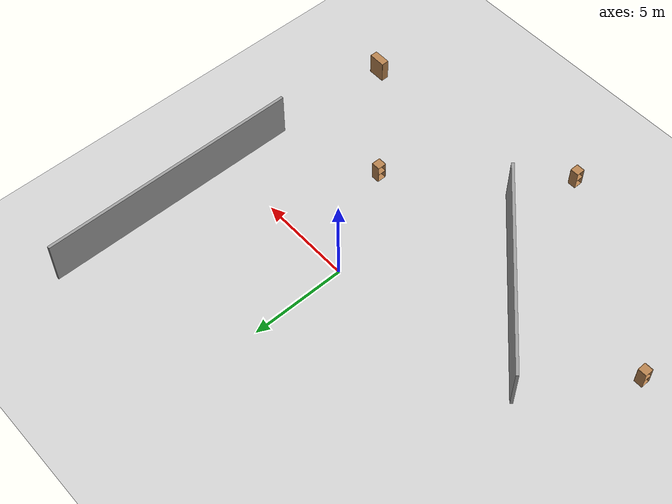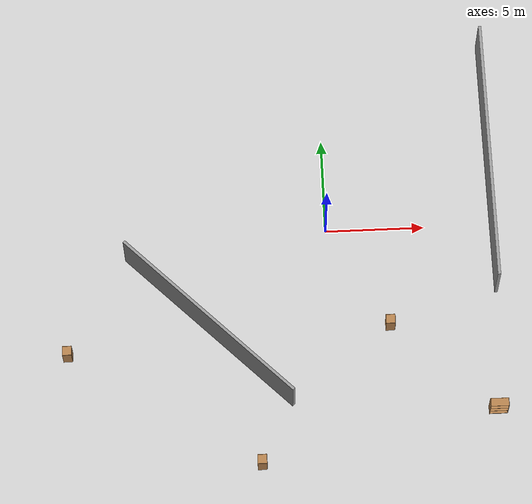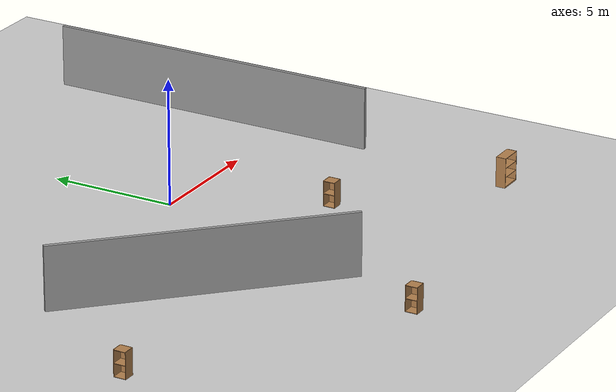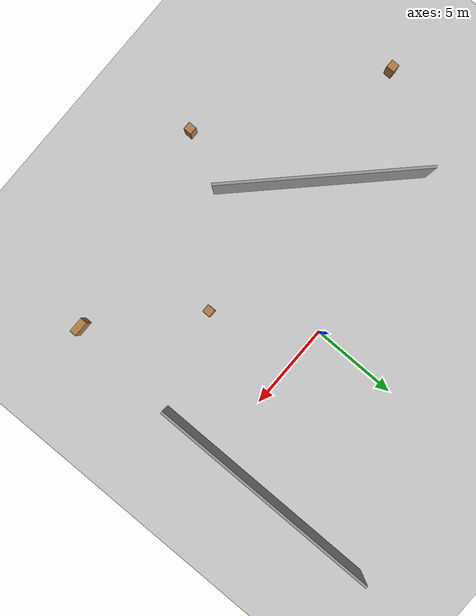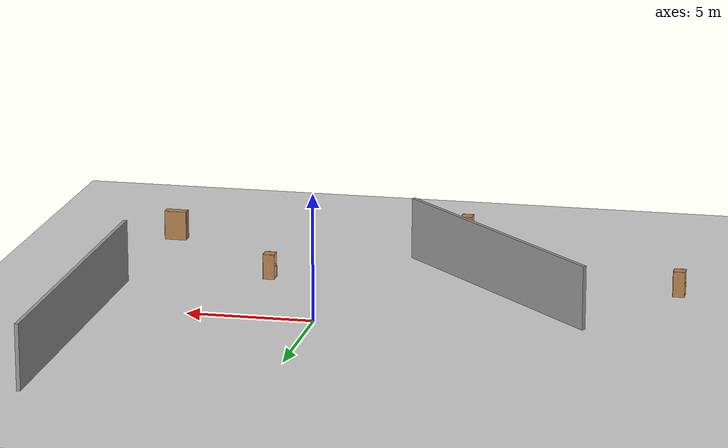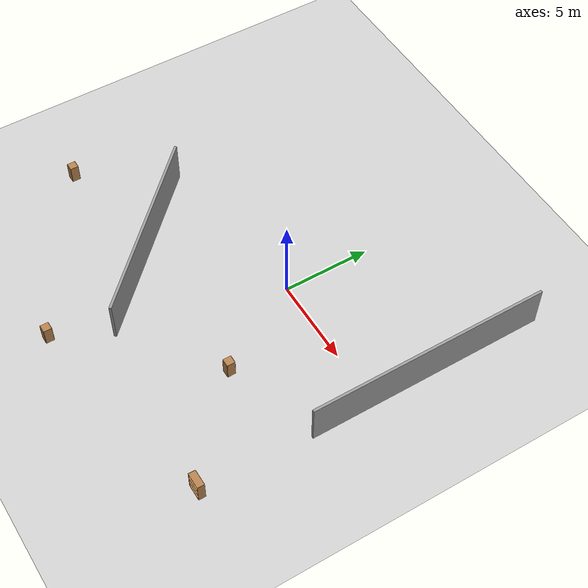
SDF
<sdf version="1.6">
 <world name="default">
  <model name="ground_plane">
   <static>1</static>
   <link name="link">
    <collision name="collision">
     <geometry><plane><normal>0 0 1</normal><size>100 100</size></plane></geometry>
     <surface><friction><ode><mu>100</mu><mu2>50</mu2></ode></friction></surface>
    </collision>
    <visual name="visual">
     <cast_shadows>0</cast_shadows>
     <geometry><plane><normal>0 0 1</normal><size>100 100</size></plane></geometry>
     <material>
      <script><uri>file://media/materials/scripts/gazebo.material</uri><name>Gazebo/Grey</name></script>
     </material>
    </visual>
   </link>
  </model>
  <model name="room8">
   <pose>-0.858241 0.405678 0 0 -0 0</pose>
   <link name="Wall_5">
    <collision name="Wall_5_Collision">
     <geometry><box><size>11.5 0.15 2.5</size></box></geometry>
     <pose>0 0 1.25 0 -0 0</pose>
    </collision>
    <visual name="Wall_5_Visual">
     <pose>0 0 1.25 0 -0 0</pose>
     <geometry><box><size>11.5 0.15 2.5</size></box></geometry>
     <material>
      <script><uri>file://media/materials/scripts/gazebo.material</uri><name>Gazebo/Grey</name></script>
      <ambient>1 1 1 1</ambient>
     </material>
     <meta><layer>0</layer></meta>
    </visual>
    <pose>-5.24399 -5.56598 0 0 -0 -0.785398</pose>
   </link>
   <link name="Wall_7">
    <collision name="Wall_7_Collision">
     <geometry><box><size>13.75 0.15 2.5</size></box></geometry>
     <pose>0 0 1.25 0 -0 0</pose>
    </collision>
    <visual name="Wall_7_Visual">
     <pose>0 0 1.25 0 -0 0</pose>
     <geometry><box><size>13.75 0.15 2.5</size></box></geometry>
     <material>
      <script><uri>file://media/materials/scripts/gazebo.material</uri><name>Gazebo/Grey</name></script>
      <ambient>1 1 1 1</ambient>
     </material>
     <meta><layer>0</layer></meta>
    </visual>
    <pose>9.28789 2.80988 0 0 -0 -1.5708</pose>
   </link>
   <static>1</static>
  </model>
  <model name="bookshelf_0">
   <static>1</static>
   <link name="link">
    <inertial><mass>1</mass></inertial>
    <collision name="back">
     <pose>0 0.005 0.6 0 -0 0</pose>
     <geometry><box><size>0.9 0.01 1.2</size></box></geometry>
    </collision>
    <visual name="visual1">
     <pose>0 0.005 0.6 0 -0 0</pose>
     <geometry><box><size>0.9 0.01 1.2</size></box></geometry>
     <material>
      <script><uri>file://media/materials/scripts/gazebo.material</uri><name>Gazebo/Wood</name></script>
     </material>
    </visual>
    <collision name="left_side">
     <pose>0.45 -0.195 0.6 0 -0 0</pose>
     <geometry><box><size>0.02 0.4 1.2</size></box></geometry>
    </collision>
    <visual name="visual2">
     <pose>0.45 -0.195 0.6 0 -0 0</pose>
     <geometry><box><size>0.02 0.4 1.2</size></box></geometry>
     <material>
      <script><uri>file://media/materials/scripts/gazebo.material</uri><name>Gazebo/Wood</name></script>
     </material>
    </visual>
    <collision name="right_side">
     <pose>-0.45 -0.195 0.6 0 -0 0</pose>
     <geometry><box><size>0.02 0.4 1.2</size></box></geometry>
    </collision>
    <visual name="visual3">
     <pose>-0.45 -0.195 0.6 0 -0 0</pose>
     <geometry><box><size>0.02 0.4 1.2</size></box></geometry>
     <material>
      <script><uri>file://media/materials/scripts/gazebo.material</uri><name>Gazebo/Wood</name></script>
     </material>
    </visual>
    <collision name="bottom">
     <pose>0 -0.195 0.03 0 -0 0</pose>
     <geometry><box><size>0.88 0.4 0.06</size></box></geometry>
    </collision>
    <visual name="visual4">
     <pose>0 -0.195 0.03 0 -0 0</pose>
     <geometry><box><size>0.88 0.4 0.06</size></box></geometry>
     <material>
      <script><uri>file://media/materials/scripts/gazebo.material</uri><name>Gazebo/Wood</name></script>
     </material>
    </visual>
    <collision name="top">
     <pose>0 -0.195 1.19 0 -0 0</pose>
     <geometry><box><size>0.88 0.4 0.02</size></box></geometry>
    </collision>
    <visual name="visual5">
     <pose>0 -0.195 1.19 0 -0 0</pose>
     <geometry><box><size>0.88 0.4 0.02</size></box></geometry>
     <material>
      <script><uri>file://media/materials/scripts/gazebo.material</uri><name>Gazebo/Wood</name></script>
     </material>
    </visual>
    <collision name="low_shelf">
     <pose>0 -0.195 0.43 0 -0 0</pose>
     <geometry><box><size>0.88 0.4 0.02</size></box></geometry>
    </collision>
    <visual name="visual6">
     <pose>0 -0.195 0.43 0 -0 0</pose>
     <geometry><box><size>0.88 0.4 0.02</size></box></geometry>
     <material>
      <script><uri>file://media/materials/scripts/gazebo.material</uri><name>Gazebo/Wood</name></script>
     </material>
    </visual>
    <collision name="high_shelf">
     <pose>0 -0.195 0.8 0 -0 0</pose>
     <geometry><box><size>0.88 0.4 0.02</size></box></geometry>
    </collision>
    <visual name="visual7">
     <pose>0 -0.195 0.8 0 -0 0</pose>
     <geometry><box><size>0.88 0.4 0.02</size></box></geometry>
     <material>
      <script><uri>file://media/materials/scripts/gazebo.material</uri><name>Gazebo/Wood</name></script>
     </material>
    </visual>
   </link>
   <pose>8.07933 -9.71026 0 0 -0 0</pose>
  </model>
  <model name="cabinet_0">
   <static>1</static>
   <link name="cabinet_bottom_plate">
    <inertial>
     <pose>0 0 -1 0 -0 0</pose>
     <inertia><ixx>2.05</ixx><ixy>0</ixy><ixz>0</ixz><iyy>2.05</iyy><iyz>0</iyz><izz>2.05</izz></inertia>
     <mass>25</mass>
    </inertial>
    <collision name="cabinet_bottom_plate_geom">
     <pose>0 0 0.01 0 -0 0</pose>
     <geometry><box><size>0.45 0.45 0.02</size></box></geometry>
    </collision>
    <visual name="cabinet_bottom_plate_geom_visual">
     <pose>0 0 0.01 0 -0 0</pose>
     <geometry><box><size>0.45 0.45 0.02</size></box></geometry>
     <material>
      <script><uri>file://media/materials/scripts/gazebo.material</uri><name>Gazebo/Wood</name></script>
     </material>
    </visual>
    <collision name="cabinet_bottom_plate_geom_cabinet_back_plate">
     <pose>0.235 0 0.51 0 -0 0</pose>
     <geometry><box><size>0.02 0.45 1.02</size></box></geometry>
    </collision>
    <visual name="cabinet_bottom_plate_geom_cabinet_back_plate_visual">
     <pose>0.235 0 0.51 0 -0 0</pose>
     <geometry><box><size>0.02 0.45 1.02</size></box></geometry>
     <material>
      <script><uri>file://media/materials/scripts/gazebo.material</uri><name>Gazebo/Wood</name></script>
     </material>
    </visual>
    <collision name="cabinet_bottom_plate_geom_cabinet_left_plate">
     <pose>0 0.235 0.51 0 -0 0</pose>
     <geometry><box><size>0.45 0.02 1.02</size></box></geometry>
    </collision>
    <visual name="cabinet_bottom_plate_geom_cabinet_left_plate_visual">
     <pose>0 0.235 0.51 0 -0 0</pose>
     <geometry><box><size>0.45 0.02 1.02</size></box></geometry>
     <material>
      <script><uri>file://media/materials/scripts/gazebo.material</uri><name>Gazebo/Wood</name></script>
     </material>
    </visual>
    <collision name="cabinet_bottom_plate_geom_cabinet_middle_plate">
     <pose>0 0 0.51 0 -0 0</pose>
     <geometry><box><size>0.45 0.45 0.02</size></box></geometry>
    </collision>
    <visual name="cabinet_bottom_plate_geom_cabinet_middle_plate_visual">
     <pose>0 0 0.51 0 -0 0</pose>
     <geometry><box><size>0.45 0.45 0.02</size></box></geometry>
     <material>
      <script><uri>file://media/materials/scripts/gazebo.material</uri><name>Gazebo/Wood</name></script>
     </material>
    </visual>
    <collision name="cabinet_bottom_plate_geom_cabinet_right_plate">
     <pose>0 -0.235 0.51 0 -0 0</pose>
     <geometry><box><size>0.45 0.02 1.02</size></box></geometry>
    </collision>
    <visual name="cabinet_bottom_plate_geom_cabinet_right_plate_visual">
     <pose>0 -0.235 0.51 0 -0 0</pose>
     <geometry><box><size>0.45 0.02 1.02</size></box></geometry>
     <material>
      <script><uri>file://media/materials/scripts/gazebo.material</uri><name>Gazebo/Wood</name></script>
     </material>
    </visual>
    <collision name="cabinet_bottom_plate_geom_cabinet_top_plate">
     <pose>0 0 1.01 0 -0 0</pose>
     <geometry><box><size>0.45 0.45 0.02</size></box></geometry>
    </collision>
    <visual name="cabinet_bottom_plate_geom_cabinet_top_plate_visual">
     <pose>0 0 1.01 0 -0 0</pose>
     <geometry><box><size>0.45 0.45 0.02</size></box></geometry>
     <material>
      <script><uri>file://media/materials/scripts/gazebo.material</uri><name>Gazebo/Wood</name></script>
     </material>
    </visual>
   </link>
   <pose>2.97505 -5.23446 0 0 -0 0</pose>
  </model>
  <model name="cabinet_1">
   <static>1</static>
   <link name="cabinet_bottom_plate">
    <inertial>
     <pose>0 0 -1 0 -0 0</pose>
     <inertia><ixx>2.05</ixx><ixy>0</ixy><ixz>0</ixz><iyy>2.05</iyy><iyz>0</iyz><izz>2.05</izz></inertia>
     <mass>25</mass>
    </inertial>
    <collision name="cabinet_bottom_plate_geom">
     <pose>0 0 0.01 0 -0 0</pose>
     <geometry><box><size>0.45 0.45 0.02</size></box></geometry>
    </collision>
    <visual name="cabinet_bottom_plate_geom_visual">
     <pose>0 0 0.01 0 -0 0</pose>
     <geometry><box><size>0.45 0.45 0.02</size></box></geometry>
     <material>
      <script><uri>file://media/materials/scripts/gazebo.material</uri><name>Gazebo/Wood</name></script>
     </material>
    </visual>
    <collision name="cabinet_bottom_plate_geom_cabinet_back_plate">
     <pose>0.235 0 0.51 0 -0 0</pose>
     <geometry><box><size>0.02 0.45 1.02</size></box></geometry>
    </collision>
    <visual name="cabinet_bottom_plate_geom_cabinet_back_plate_visual">
     <pose>0.235 0 0.51 0 -0 0</pose>
     <geometry><box><size>0.02 0.45 1.02</size></box></geometry>
     <material>
      <script><uri>file://media/materials/scripts/gazebo.material</uri><name>Gazebo/Wood</name></script>
     </material>
    </visual>
    <collision name="cabinet_bottom_plate_geom_cabinet_left_plate">
     <pose>0 0.235 0.51 0 -0 0</pose>
     <geometry><box><size>0.45 0.02 1.02</size></box></geometry>
    </collision>
    <visual name="cabinet_bottom_plate_geom_cabinet_left_plate_visual">
     <pose>0 0.235 0.51 0 -0 0</pose>
     <geometry><box><size>0.45 0.02 1.02</size></box></geometry>
     <material>
      <script><uri>file://media/materials/scripts/gazebo.material</uri><name>Gazebo/Wood</name></script>
     </material>
    </visual>
    <collision name="cabinet_bottom_plate_geom_cabinet_middle_plate">
     <pose>0 0 0.51 0 -0 0</pose>
     <geometry><box><size>0.45 0.45 0.02</size></box></geometry>
    </collision>
    <visual name="cabinet_bottom_plate_geom_cabinet_middle_plate_visual">
     <pose>0 0 0.51 0 -0 0</pose>
     <geometry><box><size>0.45 0.45 0.02</size></box></geometry>
     <material>
      <script><uri>file://media/materials/scripts/gazebo.material</uri><name>Gazebo/Wood</name></script>
     </material>
    </visual>
    <collision name="cabinet_bottom_plate_geom_cabinet_right_plate">
     <pose>0 -0.235 0.51 0 -0 0</pose>
     <geometry><box><size>0.45 0.02 1.02</size></box></geometry>
    </collision>
    <visual name="cabinet_bottom_plate_geom_cabinet_right_plate_visual">
     <pose>0 -0.235 0.51 0 -0 0</pose>
     <geometry><box><size>0.45 0.02 1.02</size></box></geometry>
     <material>
      <script><uri>file://media/materials/scripts/gazebo.material</uri><name>Gazebo/Wood</name></script>
     </material>
    </visual>
    <collision name="cabinet_bottom_plate_geom_cabinet_top_plate">
     <pose>0 0 1.01 0 -0 0</pose>
     <geometry><box><size>0.45 0.45 0.02</size></box></geometry>
    </collision>
    <visual name="cabinet_bottom_plate_geom_cabinet_top_plate_visual">
     <pose>0 0 1.01 0 -0 0</pose>
     <geometry><box><size>0.45 0.45 0.02</size></box></geometry>
     <material>
      <script><uri>file://media/materials/scripts/gazebo.material</uri><name>Gazebo/Wood</name></script>
     </material>
    </visual>
   </link>
   <pose>-13.1946 -6.21905 0 0 -0 0</pose>
  </model>
  <model name="cabinet_2">
   <static>1</static>
   <link name="cabinet_bottom_plate">
    <inertial>
     <pose>0 0 -1 0 -0 0</pose>
     <inertia><ixx>2.05</ixx><ixy>0</ixy><ixz>0</ixz><iyy>2.05</iyy><iyz>0</iyz><izz>2.05</izz></inertia>
     <mass>25</mass>
    </inertial>
    <collision name="cabinet_bottom_plate_geom">
     <pose>0 0 0.01 0 -0 0</pose>
     <geometry><box><size>0.45 0.45 0.02</size></box></geometry>
    </collision>
    <visual name="cabinet_bottom_plate_geom_visual">
     <pose>0 0 0.01 0 -0 0</pose>
     <geometry><box><size>0.45 0.45 0.02</size></box></geometry>
     <material>
      <script><uri>file://media/materials/scripts/gazebo.material</uri><name>Gazebo/Wood</name></script>
     </material>
    </visual>
    <collision name="cabinet_bottom_plate_geom_cabinet_back_plate">
     <pose>0.235 0 0.51 0 -0 0</pose>
     <geometry><box><size>0.02 0.45 1.02</size></box></geometry>
    </collision>
    <visual name="cabinet_bottom_plate_geom_cabinet_back_plate_visual">
     <pose>0.235 0 0.51 0 -0 0</pose>
     <geometry><box><size>0.02 0.45 1.02</size></box></geometry>
     <material>
      <script><uri>file://media/materials/scripts/gazebo.material</uri><name>Gazebo/Wood</name></script>
     </material>
    </visual>
    <collision name="cabinet_bottom_plate_geom_cabinet_left_plate">
     <pose>0 0.235 0.51 0 -0 0</pose>
     <geometry><box><size>0.45 0.02 1.02</size></box></geometry>
    </collision>
    <visual name="cabinet_bottom_plate_geom_cabinet_left_plate_visual">
     <pose>0 0.235 0.51 0 -0 0</pose>
     <geometry><box><size>0.45 0.02 1.02</size></box></geometry>
     <material>
      <script><uri>file://media/materials/scripts/gazebo.material</uri><name>Gazebo/Wood</name></script>
     </material>
    </visual>
    <collision name="cabinet_bottom_plate_geom_cabinet_middle_plate">
     <pose>0 0 0.51 0 -0 0</pose>
     <geometry><box><size>0.45 0.45 0.02</size></box></geometry>
    </collision>
    <visual name="cabinet_bottom_plate_geom_cabinet_middle_plate_visual">
     <pose>0 0 0.51 0 -0 0</pose>
     <geometry><box><size>0.45 0.45 0.02</size></box></geometry>
     <material>
      <script><uri>file://media/materials/scripts/gazebo.material</uri><name>Gazebo/Wood</name></script>
     </material>
    </visual>
    <collision name="cabinet_bottom_plate_geom_cabinet_right_plate">
     <pose>0 -0.235 0.51 0 -0 0</pose>
     <geometry><box><size>0.45 0.02 1.02</size></box></geometry>
    </collision>
    <visual name="cabinet_bottom_plate_geom_cabinet_right_plate_visual">
     <pose>0 -0.235 0.51 0 -0 0</pose>
     <geometry><box><size>0.45 0.02 1.02</size></box></geometry>
     <material>
      <script><uri>file://media/materials/scripts/gazebo.material</uri><name>Gazebo/Wood</name></script>
     </material>
    </visual>
    <collision name="cabinet_bottom_plate_geom_cabinet_top_plate">
     <pose>0 0 1.01 0 -0 0</pose>
     <geometry><box><size>0.45 0.45 0.02</size></box></geometry>
    </collision>
    <visual name="cabinet_bottom_plate_geom_cabinet_top_plate_visual">
     <pose>0 0 1.01 0 -0 0</pose>
     <geometry><box><size>0.45 0.45 0.02</size></box></geometry>
     <material>
      <script><uri>file://media/materials/scripts/gazebo.material</uri><name>Gazebo/Wood</name></script>
     </material>
    </visual>
   </link>
   <pose>-3.72409 -12.2541 0 0 -0 0</pose>
  </model>
 </world>
</sdf>
